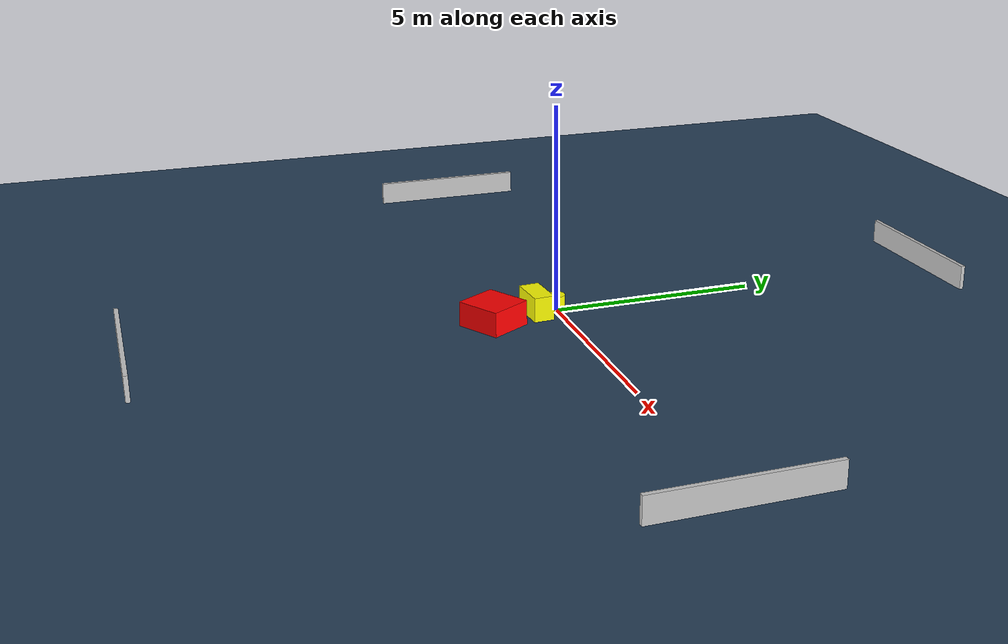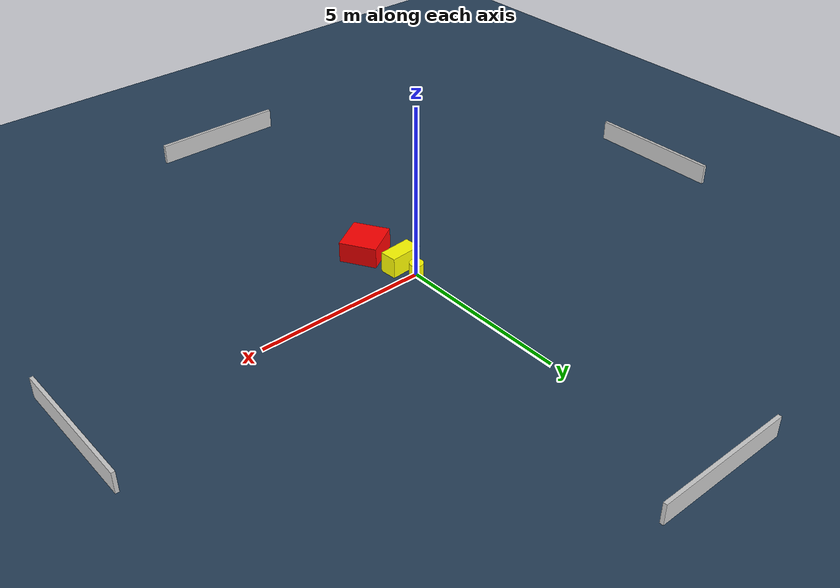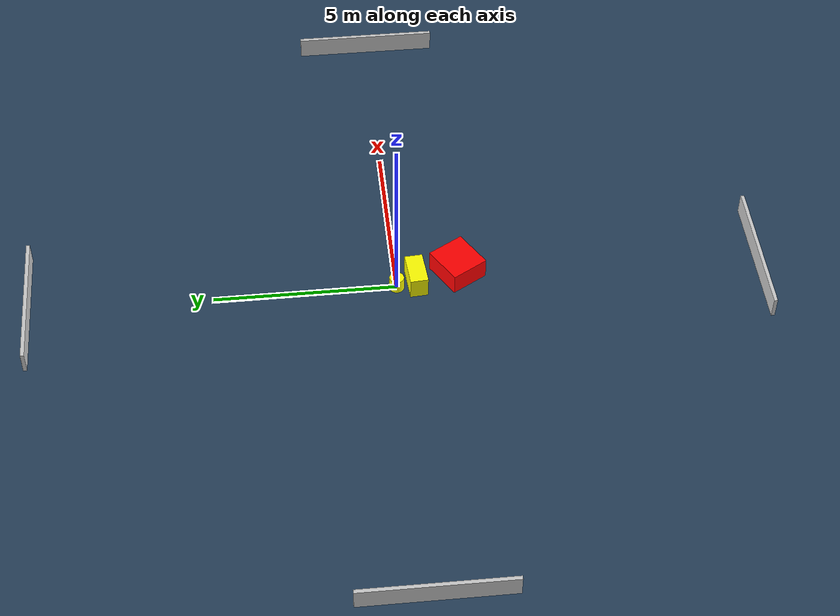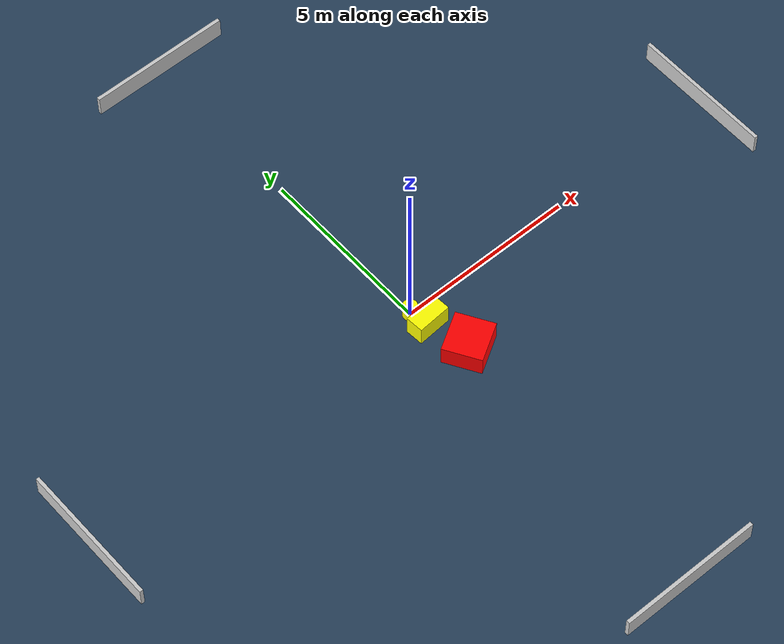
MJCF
<?xml version="1.0" ?>
<mujoco model="generated_environment">
  <option timestep="0.01" integrator="RK4" cone="elliptic"/>
  <default>
    <geom density="1"/>
  </default>
  <asset>
    <texture builtin="gradient" height="3072" name="skybox" rgb1="0.3 0.5 0.7" rgb2="0 0 0" type="skybox" width="512"/>
    <texture builtin="checker" height="300" name="groundplane" rgb1="0.2 0.3 0.4" rgb2="0.1 0.2 0.3" type="2d" width="300"/>
    <material name="groundplane" reflectance="0.2" texrepeat="5 5" texture="groundplane"/>
  </asset>
  <worldbody>
    <light dir="0 0 -1" directional="true" pos="0 0 1.5"/>
    <geom condim="3" friction="0.5 0.005 0.001" material="groundplane" name="floor" pos="0 0 0" size="0 0 0.05" type="plane"/>
    <body name="walls">
      <geom name="wall_1" condim="4" pos="-10.0 0.0 0.3" rgba="0.800000011920929 0.800000011920929 0.800000011920929 1.0" size="0.05 2.0 0.3" type="box"/>
      <geom name="wall_2" condim="4" pos="10.0 0.0 0.3" rgba="0.800000011920929 0.800000011920929 0.800000011920929 1.0" size="0.05 2.0 0.3" type="box"/>
      <geom name="wall_3" condim="4" pos="0.0 -10.0 0.3" rgba="0.800000011920929 0.800000011920929 0.800000011920929 1.0" size="2.0 0.05 0.3" type="box"/>
      <geom name="wall_4" condim="4" pos="0.0 10.0 0.3" rgba="0.800000011920929 0.800000011920929 0.800000011920929 1.0" size="2.0 0.05 0.3" type="box"/>
    </body>
    <body name="robot">
      <joint name="joint_x" type="slide" pos="0 0 0" axis="1 0 0"/>
      <joint name="joint_y" type="slide" pos="0 0 0" axis="0 1 0"/>
      <geom name="robot" type="cylinder" pos="0.0 0.0 0.2" size="0.2 0.2 0.0" mass="5.0" friction="1.0 0.005 0.0001" condim="4" rgba="1.0 1.0 0.0 1.0"/>
    </body>
    <body name="obstacle_1_movable">
      <geom name="obstacle_1_movable" condim="4" pos="0.1058552325900569 -0.5466674606116089 0.3" euler="0 0 184.38072663834816" friction="0.0 0.005 0.001" rgba="1.0 1.0 0.0 1.0" size="0.47904308158319736 0.24656802479693404 0.3" type="box" mass="0.1"/>
      <joint type="free"/>
    </body>
    <body name="obstacle_2_static">
      <geom name="obstacle_2_static" condim="4" pos="0.4207844644676748 -1.7155029504549395 0.3" euler="0 0 210.86720805990132" friction="0.0 0.005 0.001" rgba="1.0 0.0 0.0 1.0" size="0.5704739867543733 0.5378546894236444 0.3" type="box"/>
    </body>
  </worldbody>
  <actuator>
    <motor name="actuator_x" joint="joint_x" gear="1" ctrlrange="-1 1"/>
    <motor name="actuator_y" joint="joint_y" gear="1" ctrlrange="-1 1"/>
  </actuator>
</mujoco>
